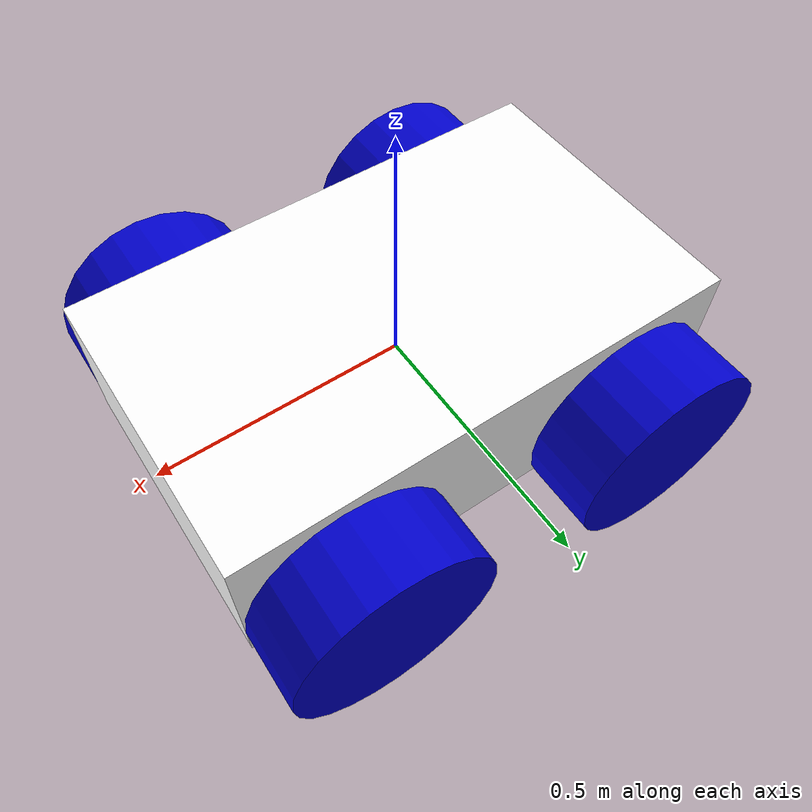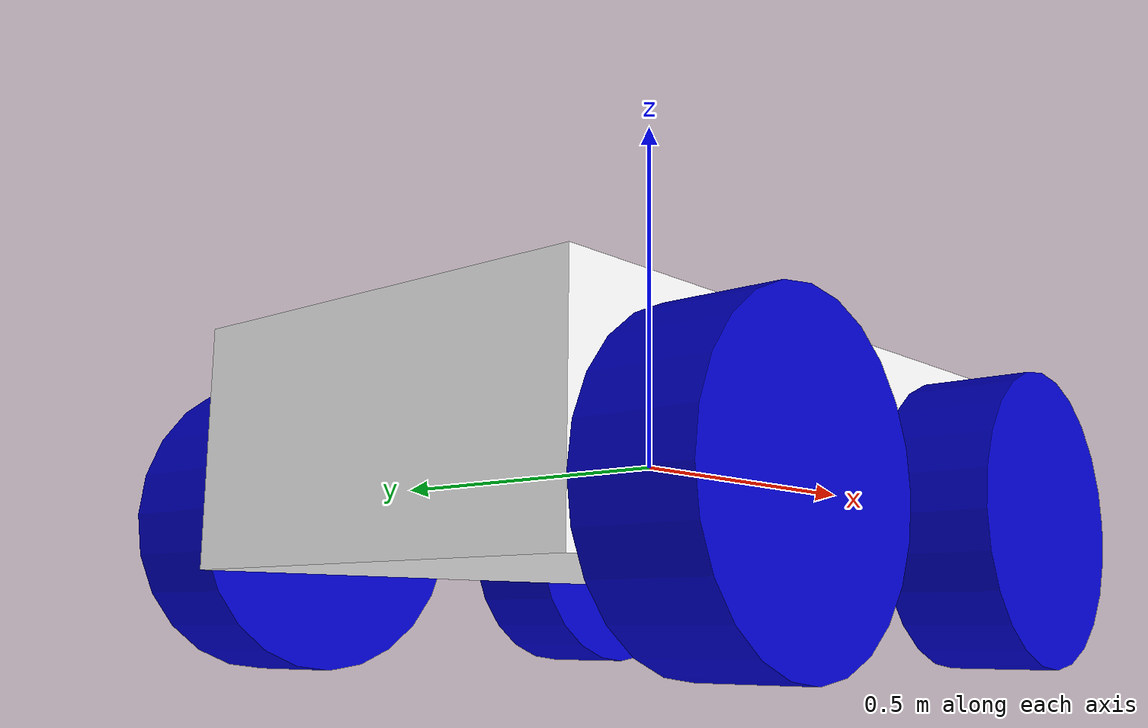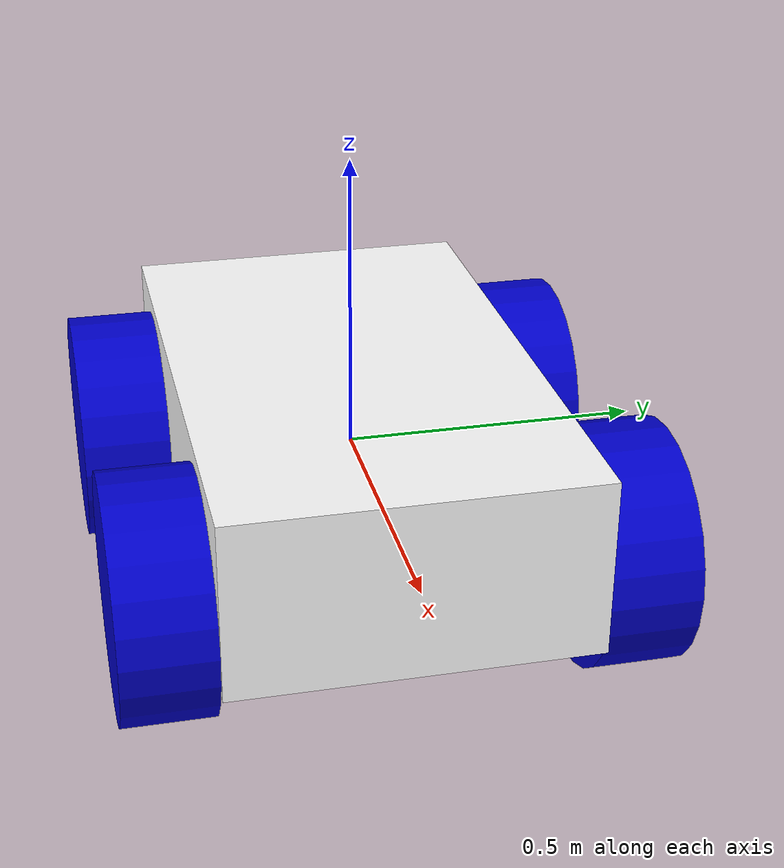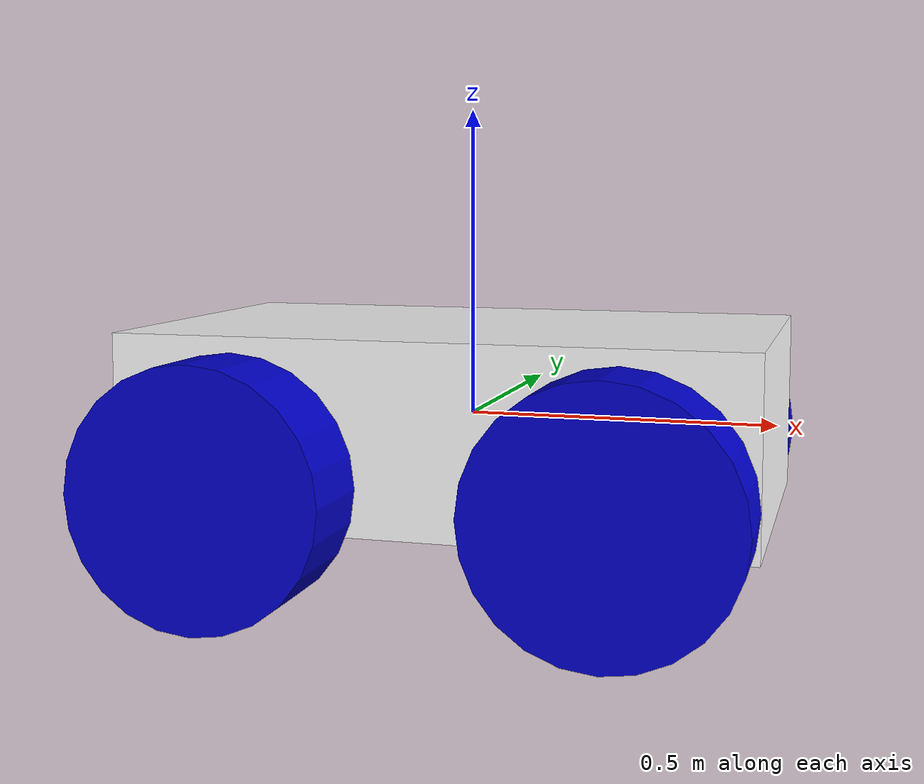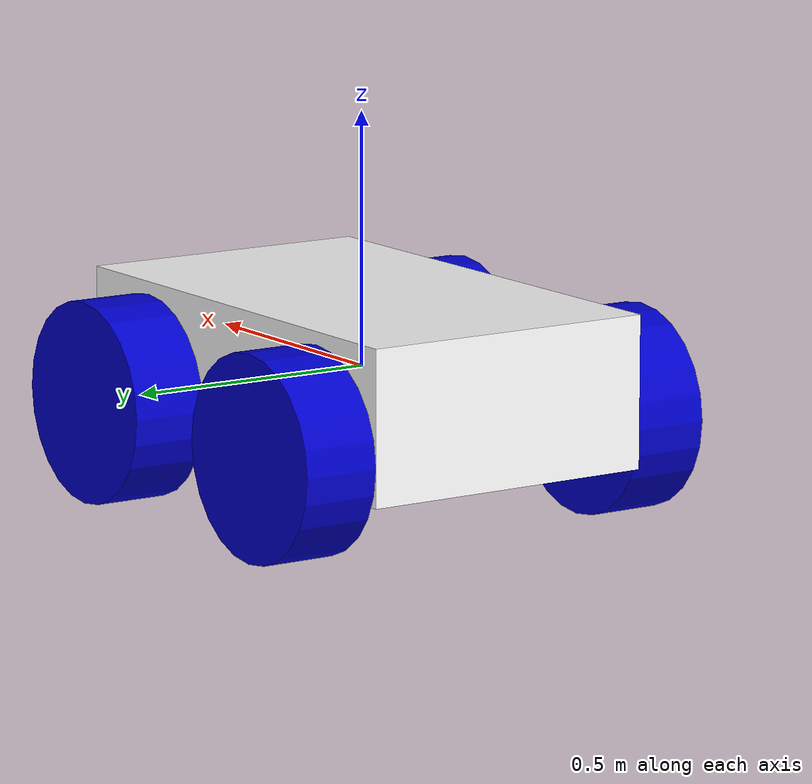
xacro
<?xml version="1.0" ?>
<!-- |    This document was autogenerated by xacro from lunarbot.xacro                 | -->
<!-- |    EDITING THIS FILE BY HAND IS NOT RECOMMENDED                                 | -->
<!--Name of robot-->
<robot name="Roberto_MkI">
  <!--Naming Materials-->
  <material name="blue">
    <color rgba="0 0 0.8 1"/>
  </material>
  <material name="white">
    <color rgba="1 1 1 1"/>
  </material>
  <!--Links-->
  <!--Body(base_link)-->
  <link name="base_link">
    <!--Visual-->
    <visual>
      <geometry>
        <box size="1.0 0.6 0.3"/>
      </geometry>
      <material name="white"/>
    </visual>
    <!--Collision-->
    <collision>
      <geometry>
        <box size="1.0 0.6 0.3"/>
      </geometry>
    </collision>
    <inertial>
      <mass value="108.09"/>
      <!--inertia: required by Gazebo-->
      <!--6 values: ixx ixy ixz iyy iyz izz-->
      <inertia ixx="4.05" ixy="0" ixz="0" iyy="9.82" iyz="0" izz="12.25"/>
    </inertial>
    <gazebo>
      <material>Gazebo/Grey</material>
    </gazebo>
  </link>
  <link name="link_0">
    <visual>
      <geometry>
        <cylinder length="0.15" radius="0.2"/>
      </geometry>
      <origin rpy="1.57075 0 0"/>
      <material name="blue"/>
    </visual>
    <collision>
      <geometry>
        <cylinder length="0.15" radius="0.2"/>
      </geometry>
      <origin rpy="1.57075 0 0"/>
    </collision>
    <inertial>
      <mass value="12.01"/>
      <inertia ixx=".14" ixy="0" ixz="0" iyy="0.24" iyz="0" izz=".14"/>
    </inertial>
  </link>
  <joint name="joint_0" type="continuous">
    <parent link="base_link"/>
    <child link="link_0"/>
    <axis xyz="0 1 0"/>
    <origin rpy="0 0 0" xyz="0.3 0.375 -0.075"/>
  </joint>
  <!--Connects Gazebo to ROS Controls-->
  <transmission name="joint_0_wheel_trans">
    <type>transmission_interface/SimpleTransmission</type>
    <actuator name="joint_0_wheel_motor">
      <mechanicalReduction>1</mechanicalReduction>
    </actuator>
    <joint name="joint_0">
      <hardwareInterface>hardware_interface/VelocityJointInterface</hardwareInterface>
    </joint>
  </transmission>
  <!--Some extra Gazebo details-->
  <gazebo reference="link_0">
    <mu1 value="200.0"/>
    <mu2 value="100.0"/>
    <kp value="10000000.0"/>
    <kd value="1.0"/>
    <material>Gazebo/Blue</material>
  </gazebo>
  <link name="link_1">
    <visual>
      <geometry>
        <cylinder length="0.15" radius="0.2"/>
      </geometry>
      <origin rpy="1.57075 0 0"/>
      <material name="blue"/>
    </visual>
    <collision>
      <geometry>
        <cylinder length="0.15" radius="0.2"/>
      </geometry>
      <origin rpy="1.57075 0 0"/>
    </collision>
    <inertial>
      <mass value="12.01"/>
      <inertia ixx=".14" ixy="0" ixz="0" iyy="0.24" iyz="0" izz=".14"/>
    </inertial>
  </link>
  <joint name="joint_1" type="continuous">
    <parent link="base_link"/>
    <child link="link_1"/>
    <axis xyz="0 1 0"/>
    <origin rpy="0 0 0" xyz="0.3 -0.375 -0.075"/>
  </joint>
  <!--Connects Gazebo to ROS Controls-->
  <transmission name="joint_1_wheel_trans">
    <type>transmission_interface/SimpleTransmission</type>
    <actuator name="joint_1_wheel_motor">
      <mechanicalReduction>1</mechanicalReduction>
    </actuator>
    <joint name="joint_1">
      <hardwareInterface>hardware_interface/VelocityJointInterface</hardwareInterface>
    </joint>
  </transmission>
  <!--Some extra Gazebo details-->
  <gazebo reference="link_1">
    <mu1 value="200.0"/>
    <mu2 value="100.0"/>
    <kp value="10000000.0"/>
    <kd value="1.0"/>
    <material>Gazebo/Blue</material>
  </gazebo>
  <link name="link_2">
    <visual>
      <geometry>
        <cylinder length="0.15" radius="0.2"/>
      </geometry>
      <origin rpy="1.57075 0 0"/>
      <material name="blue"/>
    </visual>
    <collision>
      <geometry>
        <cylinder length="0.15" radius="0.2"/>
      </geometry>
      <origin rpy="1.57075 0 0"/>
    </collision>
    <inertial>
      <mass value="12.01"/>
      <inertia ixx=".14" ixy="0" ixz="0" iyy="0.24" iyz="0" izz=".14"/>
    </inertial>
  </link>
  <joint name="joint_2" type="continuous">
    <parent link="base_link"/>
    <child link="link_2"/>
    <axis xyz="0 1 0"/>
    <origin rpy="0 0 0" xyz="-0.3 0.375 -0.075"/>
  </joint>
  <!--Connects Gazebo to ROS Controls-->
  <transmission name="joint_2_wheel_trans">
    <type>transmission_interface/SimpleTransmission</type>
    <actuator name="joint_2_wheel_motor">
      <mechanicalReduction>1</mechanicalReduction>
    </actuator>
    <joint name="joint_2">
      <hardwareInterface>hardware_interface/VelocityJointInterface</hardwareInterface>
    </joint>
  </transmission>
  <!--Some extra Gazebo details-->
  <gazebo reference="link_2">
    <mu1 value="200.0"/>
    <mu2 value="100.0"/>
    <kp value="10000000.0"/>
    <kd value="1.0"/>
    <material>Gazebo/Blue</material>
  </gazebo>
  <link name="link_3">
    <visual>
      <geometry>
        <cylinder length="0.15" radius="0.2"/>
      </geometry>
      <origin rpy="1.57075 0 0"/>
      <material name="blue"/>
    </visual>
    <collision>
      <geometry>
        <cylinder length="0.15" radius="0.2"/>
      </geometry>
      <origin rpy="1.57075 0 0"/>
    </collision>
    <inertial>
      <mass value="12.01"/>
      <inertia ixx=".14" ixy="0" ixz="0" iyy="0.24" iyz="0" izz=".14"/>
    </inertial>
  </link>
  <joint name="joint_3" type="continuous">
    <parent link="base_link"/>
    <child link="link_3"/>
    <axis xyz="0 1 0"/>
    <origin rpy="0 0 0" xyz="-0.3 -0.375 -0.075"/>
  </joint>
  <!--Connects Gazebo to ROS Controls-->
  <transmission name="joint_3_wheel_trans">
    <type>transmission_interface/SimpleTransmission</type>
    <actuator name="joint_3_wheel_motor">
      <mechanicalReduction>1</mechanicalReduction>
    </actuator>
    <joint name="joint_3">
      <hardwareInterface>hardware_interface/VelocityJointInterface</hardwareInterface>
    </joint>
  </transmission>
  <!--Some extra Gazebo details-->
  <gazebo reference="link_3">
    <mu1 value="200.0"/>
    <mu2 value="100.0"/>
    <kp value="10000000.0"/>
    <kd value="1.0"/>
    <material>Gazebo/Blue</material>
  </gazebo>
  <!--Gazebo plugin for ROS controls-->
  <gazebo>
    <plugin filename="libgazebo_ros_control.so" name="gazebo_ros_control">
      <robotNamespace>/</robotNamespace>
    </plugin>
  </gazebo>
</robot>
